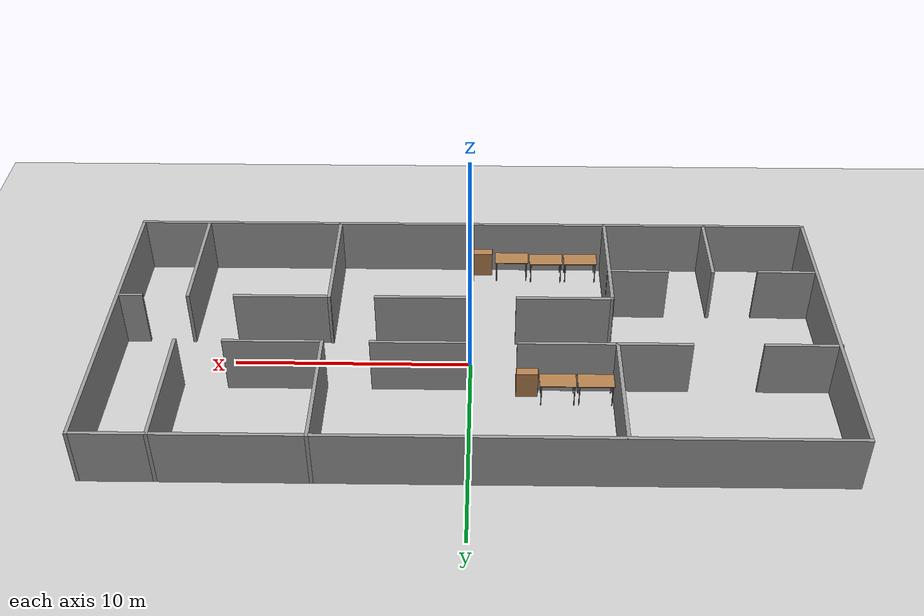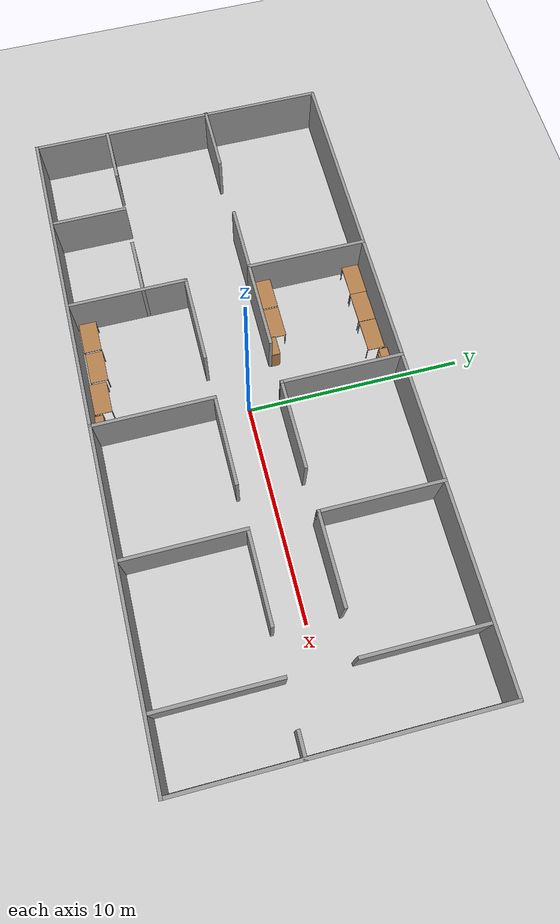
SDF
<sdf version="1.6">
 <world name="default">
  <model name="ground_plane">
   <static>1</static>
   <link name="link">
    <collision name="collision">
     <geometry><plane><normal>0 0 1</normal><size>100 100</size></plane></geometry>
     <surface>
      <contact><collide_bitmask>65535</collide_bitmask></contact>
      <friction><ode><mu>100</mu><mu2>50</mu2></ode></friction>
     </surface>
    </collision>
    <visual name="visual">
     <cast_shadows>0</cast_shadows>
     <geometry><plane><normal>0 0 1</normal><size>100 100</size></plane></geometry>
     <material>
      <script><uri>file://media/materials/scripts/gazebo.material</uri><name>Gazebo/Grey</name></script>
     </material>
    </visual>
   </link>
  </model>
  <model name="5th_floor3">
   <pose>-0.019 0 0 0 -0 0</pose>
   <link name="Wall_0">
    <collision name="Wall_0_Collision">
     <geometry><box><size>14.15 0.15 2.5</size></box></geometry>
     <pose>0 0 1.25 0 -0 0</pose>
    </collision>
    <visual name="Wall_0_Visual">
     <pose>0 0 1.25 0 -0 0</pose>
     <geometry><box><size>14.15 0.15 2.5</size></box></geometry>
     <material>
      <script><uri>file://media/materials/scripts/gazebo.material</uri><name>Gazebo/Grey</name></script>
      <ambient>1 1 1 1</ambient>
     </material>
     <meta><layer>0</layer></meta>
    </visual>
    <pose>-14.981 0 0 0 -0 -1.5708</pose>
   </link>
   <link name="Wall_1">
    <collision name="Wall_1_Collision">
     <geometry><box><size>30.15 0.15 2.5</size></box></geometry>
     <pose>0 0 1.25 0 -0 0</pose>
    </collision>
    <visual name="Wall_1_Visual">
     <pose>0 0 1.25 0 -0 0</pose>
     <geometry><box><size>30.15 0.15 2.5</size></box></geometry>
     <material>
      <script><uri>file://media/materials/scripts/gazebo.material</uri><name>Gazebo/Grey</name></script>
      <ambient>1 1 1 1</ambient>
     </material>
     <meta><layer>0</layer></meta>
    </visual>
    <pose>0.019 -7 0 0 -0 0</pose>
   </link>
   <link name="Wall_10">
    <collision name="Wall_10_Collision">
     <geometry><box><size>4.15 0.15 2.5</size></box></geometry>
     <pose>0 0 1.25 0 -0 0</pose>
    </collision>
    <visual name="Wall_10_Visual">
     <pose>0 0 1.25 0 -0 0</pose>
     <geometry><box><size>4.15 0.15 2.5</size></box></geometry>
     <material>
      <script><uri>file://media/materials/scripts/gazebo.material</uri><name>Gazebo/Grey</name></script>
      <ambient>1 1 1 1</ambient>
     </material>
     <meta><layer>0</layer></meta>
    </visual>
    <pose>-3.981 1.5 0 0 -0 0</pose>
   </link>
   <link name="Wall_12">
    <collision name="Wall_12_Collision">
     <geometry><box><size>5.65 0.15 2.5</size></box></geometry>
     <pose>0 0 1.25 0 -0 0</pose>
    </collision>
    <visual name="Wall_12_Visual">
     <pose>0 0 1.25 0 -0 0</pose>
     <geometry><box><size>5.65 0.15 2.5</size></box></geometry>
     <material>
      <script><uri>file://media/materials/scripts/gazebo.material</uri><name>Gazebo/Grey</name></script>
      <ambient>1 1 1 1</ambient>
     </material>
     <meta><layer>0</layer></meta>
    </visual>
    <pose>0.019 4.25 0 0 -0 -1.5708</pose>
   </link>
   <link name="Wall_13">
    <collision name="Wall_13_Collision">
     <geometry><box><size>0.15 0.15 2.5</size></box></geometry>
     <pose>0 0 1.25 0 -0 0</pose>
    </collision>
    <visual name="Wall_13_Visual">
     <pose>0 0 1.25 0 -0 0</pose>
     <geometry><box><size>0.15 0.15 2.5</size></box></geometry>
     <material>
      <script><uri>file://media/materials/scripts/gazebo.material</uri><name>Gazebo/Grey</name></script>
      <ambient>1 1 1 1</ambient>
     </material>
     <meta><layer>0</layer></meta>
    </visual>
    <pose>0.019 1.5 0 0 -0 0</pose>
   </link>
   <link name="Wall_14">
    <collision name="Wall_14_Collision">
     <geometry><box><size>4.15 0.15 2.5</size></box></geometry>
     <pose>0 0 1.25 0 -0 0</pose>
    </collision>
    <visual name="Wall_14_Visual">
     <pose>0 0 1.25 0 -0 0</pose>
     <geometry><box><size>4.15 0.15 2.5</size></box></geometry>
     <material>
      <script><uri>file://media/materials/scripts/gazebo.material</uri><name>Gazebo/Grey</name></script>
      <ambient>1 1 1 1</ambient>
     </material>
     <meta><layer>0</layer></meta>
    </visual>
    <pose>2.019 1.5 0 0 -0 0</pose>
   </link>
   <link name="Wall_16">
    <collision name="Wall_16_Collision">
     <geometry><box><size>5.65 0.15 2.5</size></box></geometry>
     <pose>0 0 1.25 0 -0 0</pose>
    </collision>
    <visual name="Wall_16_Visual">
     <pose>0 0 1.25 0 -0 0</pose>
     <geometry><box><size>5.65 0.15 2.5</size></box></geometry>
     <material>
      <script><uri>file://media/materials/scripts/gazebo.material</uri><name>Gazebo/Grey</name></script>
      <ambient>1 1 1 1</ambient>
     </material>
     <meta><layer>0</layer></meta>
    </visual>
    <pose>6.019 4.25 0 0 -0 -1.5708</pose>
   </link>
   <link name="Wall_17">
    <collision name="Wall_17_Collision">
     <geometry><box><size>4.15 0.15 2.5</size></box></geometry>
     <pose>0 0 1.25 0 -0 0</pose>
    </collision>
    <visual name="Wall_17_Visual">
     <pose>0 0 1.25 0 -0 0</pose>
     <geometry><box><size>4.15 0.15 2.5</size></box></geometry>
     <material>
      <script><uri>file://media/materials/scripts/gazebo.material</uri><name>Gazebo/Grey</name></script>
      <ambient>1 1 1 1</ambient>
     </material>
     <meta><layer>0</layer></meta>
    </visual>
    <pose>8.019 1.5 0 0 -0 0</pose>
   </link>
   <link name="Wall_2">
    <collision name="Wall_2_Collision">
     <geometry><box><size>14.15 0.15 2.5</size></box></geometry>
     <pose>0 0 1.25 0 -0 0</pose>
    </collision>
    <visual name="Wall_2_Visual">
     <pose>0 0 1.25 0 -0 0</pose>
     <geometry><box><size>14.15 0.15 2.5</size></box></geometry>
     <material>
      <script><uri>file://media/materials/scripts/gazebo.material</uri><name>Gazebo/Grey</name></script>
      <ambient>1 1 1 1</ambient>
     </material>
     <meta><layer>0</layer></meta>
    </visual>
    <pose>15.019 0 0 0 -0 1.5708</pose>
   </link>
   <link name="Wall_20">
    <collision name="Wall_20_Collision">
     <geometry><box><size>5.65 0.15 2.5</size></box></geometry>
     <pose>0 0 1.25 0 -0 0</pose>
    </collision>
    <visual name="Wall_20_Visual">
     <pose>0 0 1.25 0 -0 0</pose>
     <geometry><box><size>5.65 0.15 2.5</size></box></geometry>
     <material>
      <script><uri>file://media/materials/scripts/gazebo.material</uri><name>Gazebo/Grey</name></script>
      <ambient>1 1 1 1</ambient>
     </material>
     <meta><layer>0</layer></meta>
    </visual>
    <pose>12.019 4.25 0 0 -0 1.5708</pose>
   </link>
   <link name="Wall_22">
    <collision name="Wall_22_Collision">
     <geometry><box><size>2.65 0.15 2.5</size></box></geometry>
     <pose>0 0 1.25 0 -0 0</pose>
    </collision>
    <visual name="Wall_22_Visual">
     <pose>0 0 1.25 0 -0 0</pose>
     <geometry><box><size>2.65 0.15 2.5</size></box></geometry>
     <material>
      <script><uri>file://media/materials/scripts/gazebo.material</uri><name>Gazebo/Grey</name></script>
      <ambient>1 1 1 1</ambient>
     </material>
     <meta><layer>0</layer></meta>
    </visual>
    <pose>-13.731 -3.5 0 0 -0 0</pose>
   </link>
   <link name="Wall_24">
    <collision name="Wall_24_Collision">
     <geometry><box><size>3.65 0.15 2.5</size></box></geometry>
     <pose>0 0 1.25 0 -0 0</pose>
    </collision>
    <visual name="Wall_24_Visual">
     <pose>0 0 1.25 0 -0 0</pose>
     <geometry><box><size>3.65 0.15 2.5</size></box></geometry>
     <material>
      <script><uri>file://media/materials/scripts/gazebo.material</uri><name>Gazebo/Grey</name></script>
      <ambient>1 1 1 1</ambient>
     </material>
     <meta><layer>0</layer></meta>
    </visual>
    <pose>-10.481 -5.25 0 0 -0 -1.5708</pose>
   </link>
   <link name="Wall_26">
    <collision name="Wall_26_Collision">
     <geometry><box><size>2.65 0.15 2.5</size></box></geometry>
     <pose>0 0 1.25 0 -0 0</pose>
    </collision>
    <visual name="Wall_26_Visual">
     <pose>0 0 1.25 0 -0 0</pose>
     <geometry><box><size>2.65 0.15 2.5</size></box></geometry>
     <material>
      <script><uri>file://media/materials/scripts/gazebo.material</uri><name>Gazebo/Grey</name></script>
      <ambient>1 1 1 1</ambient>
     </material>
     <meta><layer>0</layer></meta>
    </visual>
    <pose>-7.231 -3.5 0 0 -0 0</pose>
   </link>
   <link name="Wall_28">
    <collision name="Wall_28_Collision">
     <geometry><box><size>5.65 0.15 2.5</size></box></geometry>
     <pose>0 0 1.25 0 -0 0</pose>
    </collision>
    <visual name="Wall_28_Visual">
     <pose>0 0 1.25 0 -0 0</pose>
     <geometry><box><size>5.65 0.15 2.5</size></box></geometry>
     <material>
      <script><uri>file://media/materials/scripts/gazebo.material</uri><name>Gazebo/Grey</name></script>
      <ambient>1 1 1 1</ambient>
     </material>
     <meta><layer>0</layer></meta>
    </visual>
    <pose>-5.981 -4.25 0 0 -0 1.5708</pose>
   </link>
   <link name="Wall_29">
    <collision name="Wall_29_Collision">
     <geometry><box><size>4.15 0.15 2.5</size></box></geometry>
     <pose>0 0 1.25 0 -0 0</pose>
    </collision>
    <visual name="Wall_29_Visual">
     <pose>0 0 1.25 0 -0 0</pose>
     <geometry><box><size>4.15 0.15 2.5</size></box></geometry>
     <material>
      <script><uri>file://media/materials/scripts/gazebo.material</uri><name>Gazebo/Grey</name></script>
      <ambient>1 1 1 1</ambient>
     </material>
     <meta><layer>0</layer></meta>
    </visual>
    <pose>-3.981 -1.5 0 0 -0 0</pose>
   </link>
   <link name="Wall_3">
    <collision name="Wall_3_Collision">
     <geometry><box><size>30.15 0.15 2.5</size></box></geometry>
     <pose>0 0 1.25 0 -0 0</pose>
    </collision>
    <visual name="Wall_3_Visual">
     <pose>0 0 1.25 0 -0 0</pose>
     <geometry><box><size>30.15 0.15 2.5</size></box></geometry>
     <material>
      <script><uri>file://media/materials/scripts/gazebo.material</uri><name>Gazebo/Grey</name></script>
      <ambient>1 1 1 1</ambient>
     </material>
     <meta><layer>0</layer></meta>
    </visual>
    <pose>0.019 7 0 0 -0 3.14159</pose>
   </link>
   <link name="Wall_31">
    <collision name="Wall_31_Collision">
     <geometry><box><size>5.65 0.15 2.5</size></box></geometry>
     <pose>0 0 1.25 0 -0 0</pose>
    </collision>
    <visual name="Wall_31_Visual">
     <pose>0 0 1.25 0 -0 0</pose>
     <geometry><box><size>5.65 0.15 2.5</size></box></geometry>
     <material>
      <script><uri>file://media/materials/scripts/gazebo.material</uri><name>Gazebo/Grey</name></script>
      <ambient>1 1 1 1</ambient>
     </material>
     <meta><layer>0</layer></meta>
    </visual>
    <pose>0.019 -4.25 0 0 -0 1.5708</pose>
   </link>
   <link name="Wall_32">
    <collision name="Wall_32_Collision">
     <geometry><box><size>4.161 0.15 2.5</size></box></geometry>
     <pose>0 0 1.25 0 -0 0</pose>
    </collision>
    <visual name="Wall_32_Visual">
     <pose>0 0 1.25 0 -0 0</pose>
     <geometry><box><size>4.161 0.15 2.5</size></box></geometry>
     <material>
      <script><uri>file://media/materials/scripts/gazebo.material</uri><name>Gazebo/Grey</name></script>
      <ambient>1 1 1 1</ambient>
     </material>
     <meta><layer>0</layer></meta>
    </visual>
    <pose>2.0245 -1.5 0 0 -0 0</pose>
   </link>
   <link name="Wall_34">
    <collision name="Wall_34_Collision">
     <geometry><box><size>5.65 0.15 2.5</size></box></geometry>
     <pose>0 0 1.25 0 -0 0</pose>
    </collision>
    <visual name="Wall_34_Visual">
     <pose>0 0 1.25 0 -0 0</pose>
     <geometry><box><size>5.65 0.15 2.5</size></box></geometry>
     <material>
      <script><uri>file://media/materials/scripts/gazebo.material</uri><name>Gazebo/Grey</name></script>
      <ambient>1 1 1 1</ambient>
     </material>
     <meta><layer>0</layer></meta>
    </visual>
    <pose>6.019 -4.25 0 0 -0 1.5708</pose>
   </link>
   <link name="Wall_35">
    <collision name="Wall_35_Collision">
     <geometry><box><size>4.15 0.15 2.5</size></box></geometry>
     <pose>0 0 1.25 0 -0 0</pose>
    </collision>
    <visual name="Wall_35_Visual">
     <pose>0 0 1.25 0 -0 0</pose>
     <geometry><box><size>4.15 0.15 2.5</size></box></geometry>
     <material>
      <script><uri>file://media/materials/scripts/gazebo.material</uri><name>Gazebo/Grey</name></script>
      <ambient>1 1 1 1</ambient>
     </material>
     <meta><layer>0</layer></meta>
    </visual>
    <pose>8.019 -1.5 0 0 -0 0</pose>
   </link>
   <link name="Wall_37">
    <collision name="Wall_37_Collision">
     <geometry><box><size>5.65 0.15 2.5</size></box></geometry>
     <pose>0 0 1.25 0 -0 0</pose>
    </collision>
    <visual name="Wall_37_Visual">
     <pose>0 0 1.25 0 -0 0</pose>
     <geometry><box><size>5.65 0.15 2.5</size></box></geometry>
     <material>
      <script><uri>file://media/materials/scripts/gazebo.material</uri><name>Gazebo/Grey</name></script>
      <ambient>1 1 1 1</ambient>
     </material>
     <meta><layer>0</layer></meta>
    </visual>
    <pose>12.019 -4.25 0 0 -0 -1.5708</pose>
   </link>
   <link name="Wall_39">
    <collision name="Wall_39_Collision">
     <geometry><box><size>1.15 0.15 2.5</size></box></geometry>
     <pose>0 0 1.25 0 -0 0</pose>
    </collision>
    <visual name="Wall_39_Visual">
     <pose>0 0 1.25 0 -0 0</pose>
     <geometry><box><size>1.15 0.15 2.5</size></box></geometry>
     <material>
      <script><uri>file://media/materials/scripts/gazebo.material</uri><name>Gazebo/Grey</name></script>
      <ambient>1 1 1 1</ambient>
     </material>
     <meta><layer>0</layer></meta>
    </visual>
    <pose>14.519 -1.5 0 0 -0 0</pose>
   </link>
   <link name="Wall_5">
    <collision name="Wall_5_Collision">
     <geometry><box><size>3.188 0.15 2.5</size></box></geometry>
     <pose>0 0 1.25 0 -0 0</pose>
    </collision>
    <visual name="Wall_5_Visual">
     <pose>0 0 1.25 0 -0 0</pose>
     <geometry><box><size>3.188 0.15 2.5</size></box></geometry>
     <material>
      <script><uri>file://media/materials/scripts/gazebo.material</uri><name>Gazebo/Grey</name></script>
      <ambient>1 1 1 1</ambient>
     </material>
     <meta><layer>0</layer></meta>
    </visual>
    <pose>-13.5 1.5 0 0 -0 0</pose>
   </link>
   <link name="Wall_7">
    <collision name="Wall_7_Collision">
     <geometry><box><size>3.15 0.15 2.5</size></box></geometry>
     <pose>0 0 1.25 0 -0 0</pose>
    </collision>
    <visual name="Wall_7_Visual">
     <pose>0 0 1.25 0 -0 0</pose>
     <geometry><box><size>3.15 0.15 2.5</size></box></geometry>
     <material>
      <script><uri>file://media/materials/scripts/gazebo.material</uri><name>Gazebo/Grey</name></script>
      <ambient>1 1 1 1</ambient>
     </material>
     <meta><layer>0</layer></meta>
    </visual>
    <pose>-7.481 1.5 0 0 -0 0</pose>
   </link>
   <link name="Wall_8">
    <collision name="Wall_8_Collision">
     <geometry><box><size>5.65 0.15 2.5</size></box></geometry>
     <pose>0 0 1.25 0 -0 0</pose>
    </collision>
    <visual name="Wall_8_Visual">
     <pose>0 0 1.25 0 -0 0</pose>
     <geometry><box><size>5.65 0.15 2.5</size></box></geometry>
     <material>
      <script><uri>file://media/materials/scripts/gazebo.material</uri><name>Gazebo/Grey</name></script>
      <ambient>1 1 1 1</ambient>
     </material>
     <meta><layer>0</layer></meta>
    </visual>
    <pose>-5.981 4.25 0 0 -0 1.5708</pose>
   </link>
   <static>1</static>
  </model>
  <model name="5th_floor_3.1">
   <model name="bookshelf">
    <static>1</static>
    <link name="link">
     <inertial><mass>1</mass></inertial>
     <collision name="back">
      <pose>0 0.005 0.6 0 -0 0</pose>
      <geometry><box><size>0.9 0.01 1.2</size></box></geometry>
     </collision>
     <visual name="visual1">
      <pose>0 0.005 0.6 0 -0 0</pose>
      <geometry><box><size>0.9 0.01 1.2</size></box></geometry>
      <material>
       <script><uri>file://media/materials/scripts/gazebo.material</uri><name>Gazebo/Wood</name></script>
      </material>
     </visual>
     <collision name="left_side">
      <pose>0.45 -0.195 0.6 0 -0 0</pose>
      <geometry><box><size>0.02 0.4 1.2</size></box></geometry>
     </collision>
     <visual name="visual2">
      <pose>0.45 -0.195 0.6 0 -0 0</pose>
      <geometry><box><size>0.02 0.4 1.2</size></box></geometry>
      <material>
       <script><uri>file://media/materials/scripts/gazebo.material</uri><name>Gazebo/Wood</name></script>
      </material>
     </visual>
     <collision name="right_side">
      <pose>-0.45 -0.195 0.6 0 -0 0</pose>
      <geometry><box><size>0.02 0.4 1.2</size></box></geometry>
     </collision>
     <visual name="visual3">
      <pose>-0.45 -0.195 0.6 0 -0 0</pose>
      <geometry><box><size>0.02 0.4 1.2</size></box></geometry>
      <material>
       <script><uri>file://media/materials/scripts/gazebo.material</uri><name>Gazebo/Wood</name></script>
      </material>
     </visual>
     <collision name="bottom">
      <pose>0 -0.195 0.03 0 -0 0</pose>
      <geometry><box><size>0.88 0.4 0.06</size></box></geometry>
     </collision>
     <visual name="visual4">
      <pose>0 -0.195 0.03 0 -0 0</pose>
      <geometry><box><size>0.88 0.4 0.06</size></box></geometry>
      <material>
       <script><uri>file://media/materials/scripts/gazebo.material</uri><name>Gazebo/Wood</name></script>
      </material>
     </visual>
     <collision name="top">
      <pose>0 -0.195 1.19 0 -0 0</pose>
      <geometry><box><size>0.88 0.4 0.02</size></box></geometry>
     </collision>
     <visual name="visual5">
      <pose>0 -0.195 1.19 0 -0 0</pose>
      <geometry><box><size>0.88 0.4 0.02</size></box></geometry>
      <material>
       <script><uri>file://media/materials/scripts/gazebo.material</uri><name>Gazebo/Wood</name></script>
      </material>
     </visual>
     <collision name="low_shelf">
      <pose>0 -0.195 0.43 0 -0 0</pose>
      <geometry><box><size>0.88 0.4 0.02</size></box></geometry>
     </collision>
     <visual name="visual6">
      <pose>0 -0.195 0.43 0 -0 0</pose>
      <geometry><box><size>0.88 0.4 0.02</size></box></geometry>
      <material>
       <script><uri>file://media/materials/scripts/gazebo.material</uri><name>Gazebo/Wood</name></script>
      </material>
     </visual>
     <collision name="high_shelf">
      <pose>0 -0.195 0.8 0 -0 0</pose>
      <geometry><box><size>0.88 0.4 0.02</size></box></geometry>
     </collision>
     <visual name="visual7">
      <pose>0 -0.195 0.8 0 -0 0</pose>
      <geometry><box><size>0.88 0.4 0.02</size></box></geometry>
      <material>
       <script><uri>file://media/materials/scripts/gazebo.material</uri><name>Gazebo/Wood</name></script>
      </material>
     </visual>
    </link>
    <pose>2.38677 6.21708 0 0 -0 0</pose>
   </model>
   <model name="bookshelf_0">
    <static>1</static>
    <link name="link">
     <inertial><mass>1</mass></inertial>
     <collision name="back">
      <pose>0 0.005 0.6 0 -0 0</pose>
      <geometry><box><size>0.9 0.01 1.2</size></box></geometry>
     </collision>
     <visual name="visual1">
      <pose>0 0.005 0.6 0 -0 0</pose>
      <geometry><box><size>0.9 0.01 1.2</size></box></geometry>
      <material>
       <script><uri>file://media/materials/scripts/gazebo.material</uri><name>Gazebo/Wood</name></script>
      </material>
     </visual>
     <collision name="left_side">
      <pose>0.45 -0.195 0.6 0 -0 0</pose>
      <geometry><box><size>0.02 0.4 1.2</size></box></geometry>
     </collision>
     <visual name="visual2">
      <pose>0.45 -0.195 0.6 0 -0 0</pose>
      <geometry><box><size>0.02 0.4 1.2</size></box></geometry>
      <material>
       <script><uri>file://media/materials/scripts/gazebo.material</uri><name>Gazebo/Wood</name></script>
      </material>
     </visual>
     <collision name="right_side">
      <pose>-0.45 -0.195 0.6 0 -0 0</pose>
      <geometry><box><size>0.02 0.4 1.2</size></box></geometry>
     </collision>
     <visual name="visual3">
      <pose>-0.45 -0.195 0.6 0 -0 0</pose>
      <geometry><box><size>0.02 0.4 1.2</size></box></geometry>
      <material>
       <script><uri>file://media/materials/scripts/gazebo.material</uri><name>Gazebo/Wood</name></script>
      </material>
     </visual>
     <collision name="bottom">
      <pose>0 -0.195 0.03 0 -0 0</pose>
      <geometry><box><size>0.88 0.4 0.06</size></box></geometry>
     </collision>
     <visual name="visual4">
      <pose>0 -0.195 0.03 0 -0 0</pose>
      <geometry><box><size>0.88 0.4 0.06</size></box></geometry>
      <material>
       <script><uri>file://media/materials/scripts/gazebo.material</uri><name>Gazebo/Wood</name></script>
      </material>
     </visual>
     <collision name="top">
      <pose>0 -0.195 1.19 0 -0 0</pose>
      <geometry><box><size>0.88 0.4 0.02</size></box></geometry>
     </collision>
     <visual name="visual5">
      <pose>0 -0.195 1.19 0 -0 0</pose>
      <geometry><box><size>0.88 0.4 0.02</size></box></geometry>
      <material>
       <script><uri>file://media/materials/scripts/gazebo.material</uri><name>Gazebo/Wood</name></script>
      </material>
     </visual>
     <collision name="low_shelf">
      <pose>0 -0.195 0.43 0 -0 0</pose>
      <geometry><box><size>0.88 0.4 0.02</size></box></geometry>
     </collision>
     <visual name="visual6">
      <pose>0 -0.195 0.43 0 -0 0</pose>
      <geometry><box><size>0.88 0.4 0.02</size></box></geometry>
      <material>
       <script><uri>file://media/materials/scripts/gazebo.material</uri><name>Gazebo/Wood</name></script>
      </material>
     </visual>
     <collision name="high_shelf">
      <pose>0 -0.195 0.8 0 -0 0</pose>
      <geometry><box><size>0.88 0.4 0.02</size></box></geometry>
     </collision>
     <visual name="visual7">
      <pose>0 -0.195 0.8 0 -0 0</pose>
      <geometry><box><size>0.88 0.4 0.02</size></box></geometry>
      <material>
       <script><uri>file://media/materials/scripts/gazebo.material</uri><name>Gazebo/Wood</name></script>
      </material>
     </visual>
    </link>
    <pose>0.608123 1.3708 0 0 -0 0</pose>
   </model>
   <model name="bookshelf_1">
    <static>1</static>
    <link name="link">
     <inertial><mass>1</mass></inertial>
     <collision name="back">
      <pose>0 0.005 0.6 0 -0 0</pose>
      <geometry><box><size>0.9 0.01 1.2</size></box></geometry>
     </collision>
     <visual name="visual1">
      <pose>0 0.005 0.6 0 -0 0</pose>
      <geometry><box><size>0.9 0.01 1.2</size></box></geometry>
      <material>
       <script><uri>file://media/materials/scripts/gazebo.material</uri><name>Gazebo/Wood</name></script>
      </material>
     </visual>
     <collision name="left_side">
      <pose>0.45 -0.195 0.6 0 -0 0</pose>
      <geometry><box><size>0.02 0.4 1.2</size></box></geometry>
     </collision>
     <visual name="visual2">
      <pose>0.45 -0.195 0.6 0 -0 0</pose>
      <geometry><box><size>0.02 0.4 1.2</size></box></geometry>
      <material>
       <script><uri>file://media/materials/scripts/gazebo.material</uri><name>Gazebo/Wood</name></script>
      </material>
     </visual>
     <collision name="right_side">
      <pose>-0.45 -0.195 0.6 0 -0 0</pose>
      <geometry><box><size>0.02 0.4 1.2</size></box></geometry>
     </collision>
     <visual name="visual3">
      <pose>-0.45 -0.195 0.6 0 -0 0</pose>
      <geometry><box><size>0.02 0.4 1.2</size></box></geometry>
      <material>
       <script><uri>file://media/materials/scripts/gazebo.material</uri><name>Gazebo/Wood</name></script>
      </material>
     </visual>
     <collision name="bottom">
      <pose>0 -0.195 0.03 0 -0 0</pose>
      <geometry><box><size>0.88 0.4 0.06</size></box></geometry>
     </collision>
     <visual name="visual4">
      <pose>0 -0.195 0.03 0 -0 0</pose>
      <geometry><box><size>0.88 0.4 0.06</size></box></geometry>
      <material>
       <script><uri>file://media/materials/scripts/gazebo.material</uri><name>Gazebo/Wood</name></script>
      </material>
     </visual>
     <collision name="top">
      <pose>0 -0.195 1.19 0 -0 0</pose>
      <geometry><box><size>0.88 0.4 0.02</size></box></geometry>
     </collision>
     <visual name="visual5">
      <pose>0 -0.195 1.19 0 -0 0</pose>
      <geometry><box><size>0.88 0.4 0.02</size></box></geometry>
      <material>
       <script><uri>file://media/materials/scripts/gazebo.material</uri><name>Gazebo/Wood</name></script>
      </material>
     </visual>
     <collision name="low_shelf">
      <pose>0 -0.195 0.43 0 -0 0</pose>
      <geometry><box><size>0.88 0.4 0.02</size></box></geometry>
     </collision>
     <visual name="visual6">
      <pose>0 -0.195 0.43 0 -0 0</pose>
      <geometry><box><size>0.88 0.4 0.02</size></box></geometry>
      <material>
       <script><uri>file://media/materials/scripts/gazebo.material</uri><name>Gazebo/Wood</name></script>
      </material>
     </visual>
     <collision name="high_shelf">
      <pose>0 -0.195 0.8 0 -0 0</pose>
      <geometry><box><size>0.88 0.4 0.02</size></box></geometry>
     </collision>
     <visual name="visual7">
      <pose>0 -0.195 0.8 0 -0 0</pose>
      <geometry><box><size>0.88 0.4 0.02</size></box></geometry>
      <material>
       <script><uri>file://media/materials/scripts/gazebo.material</uri><name>Gazebo/Wood</name></script>
      </material>
     </visual>
    </link>
    <pose>2.49451 -7.05231 0 0 -0 0</pose>
   </model>
   <model name="table">
    <static>1</static>
    <link name="link">
     <collision name="surface">
      <pose>0 0 1 0 -0 0</pose>
      <geometry><box><size>1.5 0.8 0.03</size></box></geometry>
      <surface><friction><ode><mu>0.6</mu><mu2>0.6</mu2></ode></friction></surface>
     </collision>
     <visual name="visual1">
      <pose>0 0 1 0 -0 0</pose>
      <geometry><box><size>1.5 0.8 0.03</size></box></geometry>
      <material>
       <script><uri>file://media/materials/scripts/gazebo.material</uri><name>Gazebo/Wood</name></script>
      </material>
     </visual>
     <collision name="front_left_leg">
      <pose>0.68 0.38 0.5 0 -0 0</pose>
      <geometry><cylinder><radius>0.02</radius><length>1</length></cylinder></geometry>
     </collision>
     <visual name="front_left_leg">
      <pose>0.68 0.38 0.5 0 -0 0</pose>
      <geometry><cylinder><radius>0.02</radius><length>1</length></cylinder></geometry>
      <material>
       <script><uri>file://media/materials/scripts/gazebo.material</uri><name>Gazebo/Grey</name></script>
      </material>
     </visual>
     <collision name="front_right_leg">
      <pose>0.68 -0.38 0.5 0 -0 0</pose>
      <geometry><cylinder><radius>0.02</radius><length>1</length></cylinder></geometry>
     </collision>
     <visual name="front_right_leg">
      <pose>0.68 -0.38 0.5 0 -0 0</pose>
      <geometry><cylinder><radius>0.02</radius><length>1</length></cylinder></geometry>
      <material>
       <script><uri>file://media/materials/scripts/gazebo.material</uri><name>Gazebo/Grey</name></script>
      </material>
     </visual>
     <collision name="back_right_leg">
      <pose>-0.68 -0.38 0.5 0 -0 0</pose>
      <geometry><cylinder><radius>0.02</radius><length>1</length></cylinder></geometry>
     </collision>
     <visual name="back_right_leg">
      <pose>-0.68 -0.38 0.5 0 -0 0</pose>
      <geometry><cylinder><radius>0.02</radius><length>1</length></cylinder></geometry>
      <material>
       <script><uri>file://media/materials/scripts/gazebo.material</uri><name>Gazebo/Grey</name></script>
      </material>
     </visual>
     <collision name="back_left_leg">
      <pose>-0.68 0.38 0.5 0 -0 0</pose>
      <geometry><cylinder><radius>0.02</radius><length>1</length></cylinder></geometry>
     </collision>
     <visual name="back_left_leg">
      <pose>-0.68 0.38 0.5 0 -0 0</pose>
      <geometry><cylinder><radius>0.02</radius><length>1</length></cylinder></geometry>
      <material>
       <script><uri>file://media/materials/scripts/gazebo.material</uri><name>Gazebo/Grey</name></script>
      </material>
     </visual>
    </link>
    <pose>1.04651 5.78746 0 0 -0 0</pose>
   </model>
   <model name="table_0">
    <static>1</static>
    <link name="link">
     <collision name="surface">
      <pose>0 0 1 0 -0 0</pose>
      <geometry><box><size>1.5 0.8 0.03</size></box></geometry>
      <surface><friction><ode><mu>0.6</mu><mu2>0.6</mu2></ode></friction></surface>
     </collision>
     <visual name="visual1">
      <pose>0 0 1 0 -0 0</pose>
      <geometry><box><size>1.5 0.8 0.03</size></box></geometry>
      <material>
       <script><uri>file://media/materials/scripts/gazebo.material</uri><name>Gazebo/Wood</name></script>
      </material>
     </visual>
     <collision name="front_left_leg">
      <pose>0.68 0.38 0.5 0 -0 0</pose>
      <geometry><cylinder><radius>0.02</radius><length>1</length></cylinder></geometry>
     </collision>
     <visual name="front_left_leg">
      <pose>0.68 0.38 0.5 0 -0 0</pose>
      <geometry><cylinder><radius>0.02</radius><length>1</length></cylinder></geometry>
      <material>
       <script><uri>file://media/materials/scripts/gazebo.material</uri><name>Gazebo/Grey</name></script>
      </material>
     </visual>
     <collision name="front_right_leg">
      <pose>0.68 -0.38 0.5 0 -0 0</pose>
      <geometry><cylinder><radius>0.02</radius><length>1</length></cylinder></geometry>
     </collision>
     <visual name="front_right_leg">
      <pose>0.68 -0.38 0.5 0 -0 0</pose>
      <geometry><cylinder><radius>0.02</radius><length>1</length></cylinder></geometry>
      <material>
       <script><uri>file://media/materials/scripts/gazebo.material</uri><name>Gazebo/Grey</name></script>
      </material>
     </visual>
     <collision name="back_right_leg">
      <pose>-0.68 -0.38 0.5 0 -0 0</pose>
      <geometry><cylinder><radius>0.02</radius><length>1</length></cylinder></geometry>
     </collision>
     <visual name="back_right_leg">
      <pose>-0.68 -0.38 0.5 0 -0 0</pose>
      <geometry><cylinder><radius>0.02</radius><length>1</length></cylinder></geometry>
      <material>
       <script><uri>file://media/materials/scripts/gazebo.material</uri><name>Gazebo/Grey</name></script>
      </material>
     </visual>
     <collision name="back_left_leg">
      <pose>-0.68 0.38 0.5 0 -0 0</pose>
      <geometry><cylinder><radius>0.02</radius><length>1</length></cylinder></geometry>
     </collision>
     <visual name="back_left_leg">
      <pose>-0.68 0.38 0.5 0 -0 0</pose>
      <geometry><cylinder><radius>0.02</radius><length>1</length></cylinder></geometry>
      <material>
       <script><uri>file://media/materials/scripts/gazebo.material</uri><name>Gazebo/Grey</name></script>
      </material>
     </visual>
    </link>
    <pose>-0.465507 5.78746 0 0 -0 0</pose>
   </model>
   <model name="table_1">
    <static>1</static>
    <link name="link">
     <collision name="surface">
      <pose>0 0 1 0 -0 0</pose>
      <geometry><box><size>1.5 0.8 0.03</size></box></geometry>
      <surface><friction><ode><mu>0.6</mu><mu2>0.6</mu2></ode></friction></surface>
     </collision>
     <visual name="visual1">
      <pose>0 0 1 0 -0 0</pose>
      <geometry><box><size>1.5 0.8 0.03</size></box></geometry>
      <material>
       <script><uri>file://media/materials/scripts/gazebo.material</uri><name>Gazebo/Wood</name></script>
      </material>
     </visual>
     <collision name="front_left_leg">
      <pose>0.68 0.38 0.5 0 -0 0</pose>
      <geometry><cylinder><radius>0.02</radius><length>1</length></cylinder></geometry>
     </collision>
     <visual name="front_left_leg">
      <pose>0.68 0.38 0.5 0 -0 0</pose>
      <geometry><cylinder><radius>0.02</radius><length>1</length></cylinder></geometry>
      <material>
       <script><uri>file://media/materials/scripts/gazebo.material</uri><name>Gazebo/Grey</name></script>
      </material>
     </visual>
     <collision name="front_right_leg">
      <pose>0.68 -0.38 0.5 0 -0 0</pose>
      <geometry><cylinder><radius>0.02</radius><length>1</length></cylinder></geometry>
     </collision>
     <visual name="front_right_leg">
      <pose>0.68 -0.38 0.5 0 -0 0</pose>
      <geometry><cylinder><radius>0.02</radius><length>1</length></cylinder></geometry>
      <material>
       <script><uri>file://media/materials/scripts/gazebo.material</uri><name>Gazebo/Grey</name></script>
      </material>
     </visual>
     <collision name="back_right_leg">
      <pose>-0.68 -0.38 0.5 0 -0 0</pose>
      <geometry><cylinder><radius>0.02</radius><length>1</length></cylinder></geometry>
     </collision>
     <visual name="back_right_leg">
      <pose>-0.68 -0.38 0.5 0 -0 0</pose>
      <geometry><cylinder><radius>0.02</radius><length>1</length></cylinder></geometry>
      <material>
       <script><uri>file://media/materials/scripts/gazebo.material</uri><name>Gazebo/Grey</name></script>
      </material>
     </visual>
     <collision name="back_left_leg">
      <pose>-0.68 0.38 0.5 0 -0 0</pose>
      <geometry><cylinder><radius>0.02</radius><length>1</length></cylinder></geometry>
     </collision>
     <visual name="back_left_leg">
      <pose>-0.68 0.38 0.5 0 -0 0</pose>
      <geometry><cylinder><radius>0.02</radius><length>1</length></cylinder></geometry>
      <material>
       <script><uri>file://media/materials/scripts/gazebo.material</uri><name>Gazebo/Grey</name></script>
      </material>
     </visual>
    </link>
    <pose>-1.96039 5.80467 0 0 -0 0</pose>
   </model>
   <model name="table_2">
    <static>1</static>
    <link name="link">
     <collision name="surface">
      <pose>0 0 1 0 -0 0</pose>
      <geometry><box><size>1.5 0.8 0.03</size></box></geometry>
      <surface><friction><ode><mu>0.6</mu><mu2>0.6</mu2></ode></friction></surface>
     </collision>
     <visual name="visual1">
      <pose>0 0 1 0 -0 0</pose>
      <geometry><box><size>1.5 0.8 0.03</size></box></geometry>
      <material>
       <script><uri>file://media/materials/scripts/gazebo.material</uri><name>Gazebo/Wood</name></script>
      </material>
     </visual>
     <collision name="front_left_leg">
      <pose>0.68 0.38 0.5 0 -0 0</pose>
      <geometry><cylinder><radius>0.02</radius><length>1</length></cylinder></geometry>
     </collision>
     <visual name="front_left_leg">
      <pose>0.68 0.38 0.5 0 -0 0</pose>
      <geometry><cylinder><radius>0.02</radius><length>1</length></cylinder></geometry>
      <material>
       <script><uri>file://media/materials/scripts/gazebo.material</uri><name>Gazebo/Grey</name></script>
      </material>
     </visual>
     <collision name="front_right_leg">
      <pose>0.68 -0.38 0.5 0 -0 0</pose>
      <geometry><cylinder><radius>0.02</radius><length>1</length></cylinder></geometry>
     </collision>
     <visual name="front_right_leg">
      <pose>0.68 -0.38 0.5 0 -0 0</pose>
      <geometry><cylinder><radius>0.02</radius><length>1</length></cylinder></geometry>
      <material>
       <script><uri>file://media/materials/scripts/gazebo.material</uri><name>Gazebo/Grey</name></script>
      </material>
     </visual>
     <collision name="back_right_leg">
      <pose>-0.68 -0.38 0.5 0 -0 0</pose>
      <geometry><cylinder><radius>0.02</radius><length>1</length></cylinder></geometry>
     </collision>
     <visual name="back_right_leg">
      <pose>-0.68 -0.38 0.5 0 -0 0</pose>
      <geometry><cylinder><radius>0.02</radius><length>1</length></cylinder></geometry>
      <material>
       <script><uri>file://media/materials/scripts/gazebo.material</uri><name>Gazebo/Grey</name></script>
      </material>
     </visual>
     <collision name="back_left_leg">
      <pose>-0.68 0.38 0.5 0 -0 0</pose>
      <geometry><cylinder><radius>0.02</radius><length>1</length></cylinder></geometry>
     </collision>
     <visual name="back_left_leg">
      <pose>-0.68 0.38 0.5 0 -0 0</pose>
      <geometry><cylinder><radius>0.02</radius><length>1</length></cylinder></geometry>
      <material>
       <script><uri>file://media/materials/scripts/gazebo.material</uri><name>Gazebo/Grey</name></script>
      </material>
     </visual>
    </link>
    <pose>-2.20621 1.50975 0 0 -0 0</pose>
   </model>
   <model name="table_3">
    <static>1</static>
    <link name="link">
     <collision name="surface">
      <pose>0 0 1 0 -0 0</pose>
      <geometry><box><size>1.5 0.8 0.03</size></box></geometry>
      <surface><friction><ode><mu>0.6</mu><mu2>0.6</mu2></ode></friction></surface>
     </collision>
     <visual name="visual1">
      <pose>0 0 1 0 -0 0</pose>
      <geometry><box><size>1.5 0.8 0.03</size></box></geometry>
      <material>
       <script><uri>file://media/materials/scripts/gazebo.material</uri><name>Gazebo/Wood</name></script>
      </material>
     </visual>
     <collision name="front_left_leg">
      <pose>0.68 0.38 0.5 0 -0 0</pose>
      <geometry><cylinder><radius>0.02</radius><length>1</length></cylinder></geometry>
     </collision>
     <visual name="front_left_leg">
      <pose>0.68 0.38 0.5 0 -0 0</pose>
      <geometry><cylinder><radius>0.02</radius><length>1</length></cylinder></geometry>
      <material>
       <script><uri>file://media/materials/scripts/gazebo.material</uri><name>Gazebo/Grey</name></script>
      </material>
     </visual>
     <collision name="front_right_leg">
      <pose>0.68 -0.38 0.5 0 -0 0</pose>
      <geometry><cylinder><radius>0.02</radius><length>1</length></cylinder></geometry>
     </collision>
     <visual name="front_right_leg">
      <pose>0.68 -0.38 0.5 0 -0 0</pose>
      <geometry><cylinder><radius>0.02</radius><length>1</length></cylinder></geometry>
      <material>
       <script><uri>file://media/materials/scripts/gazebo.material</uri><name>Gazebo/Grey</name></script>
      </material>
     </visual>
     <collision name="back_right_leg">
      <pose>-0.68 -0.38 0.5 0 -0 0</pose>
      <geometry><cylinder><radius>0.02</radius><length>1</length></cylinder></geometry>
     </collision>
     <visual name="back_right_leg">
      <pose>-0.68 -0.38 0.5 0 -0 0</pose>
      <geometry><cylinder><radius>0.02</radius><length>1</length></cylinder></geometry>
      <material>
       <script><uri>file://media/materials/scripts/gazebo.material</uri><name>Gazebo/Grey</name></script>
      </material>
     </visual>
     <collision name="back_left_leg">
      <pose>-0.68 0.38 0.5 0 -0 0</pose>
      <geometry><cylinder><radius>0.02</radius><length>1</length></cylinder></geometry>
     </collision>
     <visual name="back_left_leg">
      <pose>-0.68 0.38 0.5 0 -0 0</pose>
      <geometry><cylinder><radius>0.02</radius><length>1</length></cylinder></geometry>
      <material>
       <script><uri>file://media/materials/scripts/gazebo.material</uri><name>Gazebo/Grey</name></script>
      </material>
     </visual>
    </link>
    <pose>-0.646188 1.50825 0 0 -0 0</pose>
   </model>
   <model name="table_4">
    <static>1</static>
    <link name="link">
     <collision name="surface">
      <pose>0 0 1 0 -0 0</pose>
      <geometry><box><size>1.5 0.8 0.03</size></box></geometry>
      <surface><friction><ode><mu>0.6</mu><mu2>0.6</mu2></ode></friction></surface>
     </collision>
     <visual name="visual1">
      <pose>0 0 1 0 -0 0</pose>
      <geometry><box><size>1.5 0.8 0.03</size></box></geometry>
      <material>
       <script><uri>file://media/materials/scripts/gazebo.material</uri><name>Gazebo/Wood</name></script>
      </material>
     </visual>
     <collision name="front_left_leg">
      <pose>0.68 0.38 0.5 0 -0 0</pose>
      <geometry><cylinder><radius>0.02</radius><length>1</length></cylinder></geometry>
     </collision>
     <visual name="front_left_leg">
      <pose>0.68 0.38 0.5 0 -0 0</pose>
      <geometry><cylinder><radius>0.02</radius><length>1</length></cylinder></geometry>
      <material>
       <script><uri>file://media/materials/scripts/gazebo.material</uri><name>Gazebo/Grey</name></script>
      </material>
     </visual>
     <collision name="front_right_leg">
      <pose>0.68 -0.38 0.5 0 -0 0</pose>
      <geometry><cylinder><radius>0.02</radius><length>1</length></cylinder></geometry>
     </collision>
     <visual name="front_right_leg">
      <pose>0.68 -0.38 0.5 0 -0 0</pose>
      <geometry><cylinder><radius>0.02</radius><length>1</length></cylinder></geometry>
      <material>
       <script><uri>file://media/materials/scripts/gazebo.material</uri><name>Gazebo/Grey</name></script>
      </material>
     </visual>
     <collision name="back_right_leg">
      <pose>-0.68 -0.38 0.5 0 -0 0</pose>
      <geometry><cylinder><radius>0.02</radius><length>1</length></cylinder></geometry>
     </collision>
     <visual name="back_right_leg">
      <pose>-0.68 -0.38 0.5 0 -0 0</pose>
      <geometry><cylinder><radius>0.02</radius><length>1</length></cylinder></geometry>
      <material>
       <script><uri>file://media/materials/scripts/gazebo.material</uri><name>Gazebo/Grey</name></script>
      </material>
     </visual>
     <collision name="back_left_leg">
      <pose>-0.68 0.38 0.5 0 -0 0</pose>
      <geometry><cylinder><radius>0.02</radius><length>1</length></cylinder></geometry>
     </collision>
     <visual name="back_left_leg">
      <pose>-0.68 0.38 0.5 0 -0 0</pose>
      <geometry><cylinder><radius>0.02</radius><length>1</length></cylinder></geometry>
      <material>
       <script><uri>file://media/materials/scripts/gazebo.material</uri><name>Gazebo/Grey</name></script>
      </material>
     </visual>
    </link>
    <pose>1.15304 -7.03166 0 0 -0 0</pose>
   </model>
   <model name="table_5">
    <static>1</static>
    <link name="link">
     <collision name="surface">
      <pose>0 0 1 0 -0 0</pose>
      <geometry><box><size>1.5 0.8 0.03</size></box></geometry>
      <surface><friction><ode><mu>0.6</mu><mu2>0.6</mu2></ode></friction></surface>
     </collision>
     <visual name="visual1">
      <pose>0 0 1 0 -0 0</pose>
      <geometry><box><size>1.5 0.8 0.03</size></box></geometry>
      <material>
       <script><uri>file://media/materials/scripts/gazebo.material</uri><name>Gazebo/Wood</name></script>
      </material>
     </visual>
     <collision name="front_left_leg">
      <pose>0.68 0.38 0.5 0 -0 0</pose>
      <geometry><cylinder><radius>0.02</radius><length>1</length></cylinder></geometry>
     </collision>
     <visual name="front_left_leg">
      <pose>0.68 0.38 0.5 0 -0 0</pose>
      <geometry><cylinder><radius>0.02</radius><length>1</length></cylinder></geometry>
      <material>
       <script><uri>file://media/materials/scripts/gazebo.material</uri><name>Gazebo/Grey</name></script>
      </material>
     </visual>
     <collision name="front_right_leg">
      <pose>0.68 -0.38 0.5 0 -0 0</pose>
      <geometry><cylinder><radius>0.02</radius><length>1</length></cylinder></geometry>
     </collision>
     <visual name="front_right_leg">
      <pose>0.68 -0.38 0.5 0 -0 0</pose>
      <geometry><cylinder><radius>0.02</radius><length>1</length></cylinder></geometry>
      <material>
       <script><uri>file://media/materials/scripts/gazebo.material</uri><name>Gazebo/Grey</name></script>
      </material>
     </visual>
     <collision name="back_right_leg">
      <pose>-0.68 -0.38 0.5 0 -0 0</pose>
      <geometry><cylinder><radius>0.02</radius><length>1</length></cylinder></geometry>
     </collision>
     <visual name="back_right_leg">
      <pose>-0.68 -0.38 0.5 0 -0 0</pose>
      <geometry><cylinder><radius>0.02</radius><length>1</length></cylinder></geometry>
      <material>
       <script><uri>file://media/materials/scripts/gazebo.material</uri><name>Gazebo/Grey</name></script>
      </material>
     </visual>
     <collision name="back_left_leg">
      <pose>-0.68 0.38 0.5 0 -0 0</pose>
      <geometry><cylinder><radius>0.02</radius><length>1</length></cylinder></geometry>
     </collision>
     <visual name="back_left_leg">
      <pose>-0.68 0.38 0.5 0 -0 0</pose>
      <geometry><cylinder><radius>0.02</radius><length>1</length></cylinder></geometry>
      <material>
       <script><uri>file://media/materials/scripts/gazebo.material</uri><name>Gazebo/Grey</name></script>
      </material>
     </visual>
    </link>
    <pose>-0.419243 -6.93921 0 0 -0 0</pose>
   </model>
   <model name="table_6">
    <static>1</static>
    <link name="link">
     <collision name="surface">
      <pose>0 0 1 0 -0 0</pose>
      <geometry><box><size>1.5 0.8 0.03</size></box></geometry>
      <surface><friction><ode><mu>0.6</mu><mu2>0.6</mu2></ode></friction></surface>
     </collision>
     <visual name="visual1">
      <pose>0 0 1 0 -0 0</pose>
      <geometry><box><size>1.5 0.8 0.03</size></box></geometry>
      <material>
       <script><uri>file://media/materials/scripts/gazebo.material</uri><name>Gazebo/Wood</name></script>
      </material>
     </visual>
     <collision name="front_left_leg">
      <pose>0.68 0.38 0.5 0 -0 0</pose>
      <geometry><cylinder><radius>0.02</radius><length>1</length></cylinder></geometry>
     </collision>
     <visual name="front_left_leg">
      <pose>0.68 0.38 0.5 0 -0 0</pose>
      <geometry><cylinder><radius>0.02</radius><length>1</length></cylinder></geometry>
      <material>
       <script><uri>file://media/materials/scripts/gazebo.material</uri><name>Gazebo/Grey</name></script>
      </material>
     </visual>
     <collision name="front_right_leg">
      <pose>0.68 -0.38 0.5 0 -0 0</pose>
      <geometry><cylinder><radius>0.02</radius><length>1</length></cylinder></geometry>
     </collision>
     <visual name="front_right_leg">
      <pose>0.68 -0.38 0.5 0 -0 0</pose>
      <geometry><cylinder><radius>0.02</radius><length>1</length></cylinder></geometry>
      <material>
       <script><uri>file://media/materials/scripts/gazebo.material</uri><name>Gazebo/Grey</name></script>
      </material>
     </visual>
     <collision name="back_right_leg">
      <pose>-0.68 -0.38 0.5 0 -0 0</pose>
      <geometry><cylinder><radius>0.02</radius><length>1</length></cylinder></geometry>
     </collision>
     <visual name="back_right_leg">
      <pose>-0.68 -0.38 0.5 0 -0 0</pose>
      <geometry><cylinder><radius>0.02</radius><length>1</length></cylinder></geometry>
      <material>
       <script><uri>file://media/materials/scripts/gazebo.material</uri><name>Gazebo/Grey</name></script>
      </material>
     </visual>
     <collision name="back_left_leg">
      <pose>-0.68 0.38 0.5 0 -0 0</pose>
      <geometry><cylinder><radius>0.02</radius><length>1</length></cylinder></geometry>
     </collision>
     <visual name="back_left_leg">
      <pose>-0.68 0.38 0.5 0 -0 0</pose>
      <geometry><cylinder><radius>0.02</radius><length>1</length></cylinder></geometry>
      <material>
       <script><uri>file://media/materials/scripts/gazebo.material</uri><name>Gazebo/Grey</name></script>
      </material>
     </visual>
    </link>
    <pose>-1.99142 -6.96227 0 0 -0 0</pose>
   </model>
   <static>0</static>
   <pose>-2.96973 0.578 0 0 -0 0</pose>
  </model>
 </world>
</sdf>
